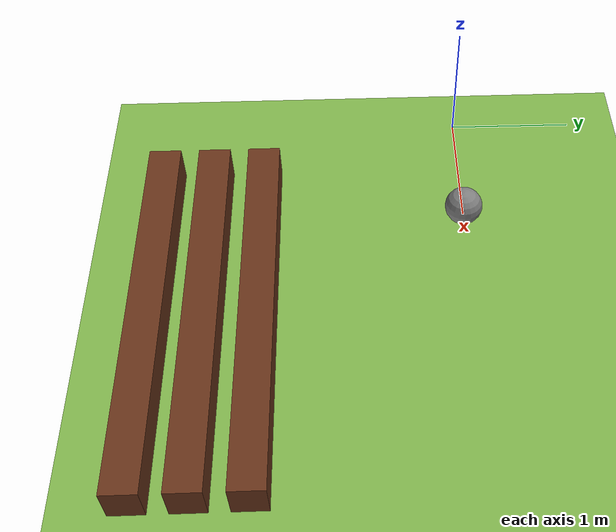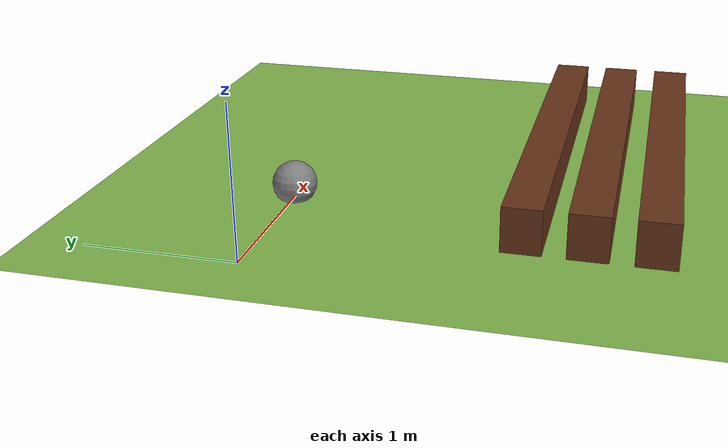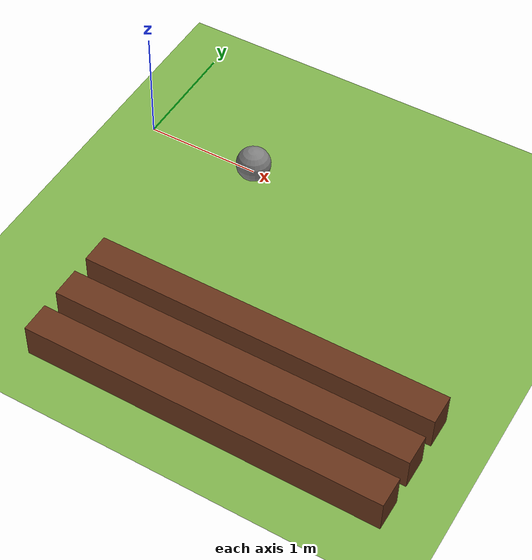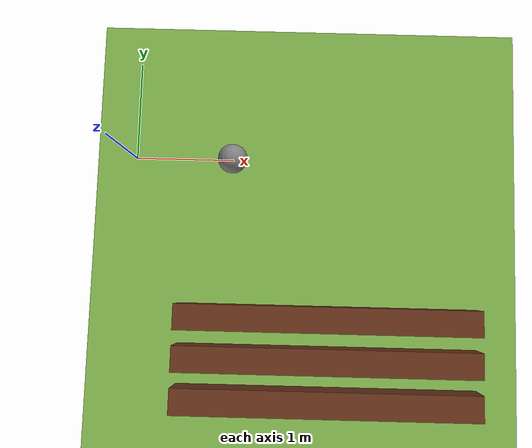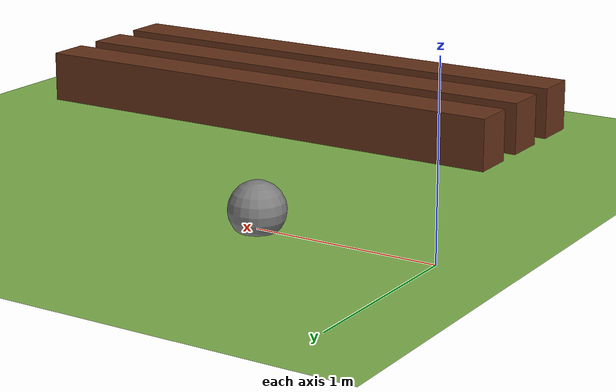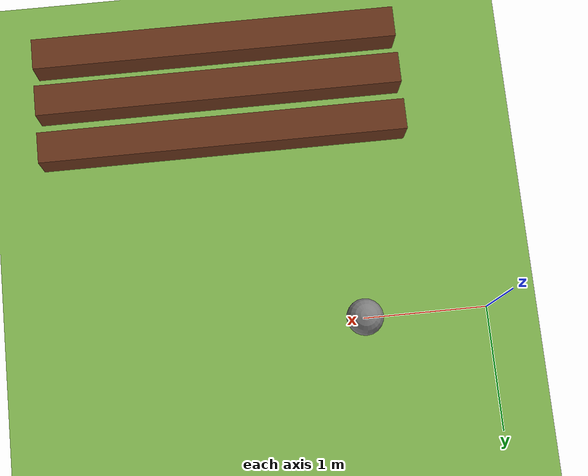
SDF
<?xml version="1.0" ?>
<sdf version="1.8">
  <world name="community_garden">

    <physics name="1ms" type="ignored">
      <max_step_size>0.001</max_step_size>
      <real_time_factor>1.0</real_time_factor>
    </physics>

    <plugin filename="gz-sim-physics-system" name="gz::sim::systems::Physics"/>
    <plugin filename="gz-sim-user-commands-system" name="gz::sim::systems::UserCommands"/>
    <plugin filename="gz-sim-scene-broadcaster-system" name="gz::sim::systems::SceneBroadcaster"/>
    <plugin filename="gz-sim-contact-system" name="gz::sim::systems::Contact"/>
    <plugin filename="gz-sim-imu-system" name="gz::sim::systems::Imu"/>
    <plugin filename="gz-sim-sensors-system" name="gz::sim::systems::Sensors">
      <render_engine>ogre2</render_engine>
    </plugin>

    <light type="directional" name="sun">
      <cast_shadows>true</cast_shadows>
      <pose>0 0 10 0 0 0</pose>
      <diffuse>0.8 0.8 0.8 1</diffuse>
      <specular>0.2 0.2 0.2 1</specular>
      <direction>-0.5 0.1 -0.9</direction>
    </light>

    <!-- Simple ground plane (no model reference) -->
    <model name="ground_plane">
      <static>true</static>
      <link name="link">
        <collision name="collision">
          <geometry>
            <plane>
              <normal>0 0 1</normal>
              <size>100 100</size>
            </plane>
          </geometry>
          <surface>
            <friction>
              <ode>
                <mu>1.0</mu>
                <mu2>1.0</mu2>
              </ode>
            </friction>
          </surface>
        </collision>
        <visual name="visual">
          <geometry>
            <plane>
              <normal>0 0 1</normal>
              <size>100 100</size>
            </plane>
          </geometry>
          <material>
            <ambient>0.5 0.7 0.3 1</ambient>
            <diffuse>0.5 0.7 0.3 1</diffuse>
            <specular>0.1 0.1 0.1 1</specular>
          </material>
        </visual>
      </link>
    </model>

    <!-- Crop Beds -->
    <model name="crop_bed_01">
      <static>true</static>
      <pose>2 -2.4 0.15 0 0 0</pose>
      <link name="bed">
        <collision name="collision">
          <geometry>
            <box>
              <size>3.0 0.254 0.3</size>
            </box>
          </geometry>
        </collision>
        <visual name="visual">
          <geometry>
            <box>
              <size>3.0 0.254 0.3</size>
            </box>
          </geometry>
          <material>
            <ambient>0.4 0.2 0.1 1</ambient>
            <diffuse>0.4 0.2 0.1 1</diffuse>
          </material>
        </visual>
      </link>
    </model>

    <model name="crop_bed_02">
      <static>true</static>
      <pose>2 -2.0 0.15 0 0 0</pose>
      <link name="bed">
        <collision name="collision">
          <geometry>
            <box>
              <size>3.0 0.254 0.3</size>
            </box>
          </geometry>
        </collision>
        <visual name="visual">
          <geometry>
            <box>
              <size>3.0 0.254 0.3</size>
            </box>
          </geometry>
          <material>
            <ambient>0.4 0.2 0.1 1</ambient>
            <diffuse>0.4 0.2 0.1 1</diffuse>
          </material>
        </visual>
      </link>
    </model>

    <model name="crop_bed_03">
      <static>true</static>
      <pose>2 -1.6 0.15 0 0 0</pose>
      <link name="bed">
        <collision name="collision">
          <geometry>
            <box>
              <size>3.0 0.254 0.3</size>
            </box>
          </geometry>
        </collision>
        <visual name="visual">
          <geometry>
            <box>
              <size>3.0 0.254 0.3</size>
            </box>
          </geometry>
          <material>
            <ambient>0.4 0.2 0.1 1</ambient>
            <diffuse>0.4 0.2 0.1 1</diffuse>
          </material>
        </visual>
      </link>
    </model>

    <!-- Rock obstacle -->
    <model name="rock_01">
      <static>true</static>
      <pose>1 0 0.1 0 0 0</pose>
      <link name="rock">
        <collision name="collision">
          <geometry>
            <sphere>
              <radius>0.15</radius>
            </sphere>
          </geometry>
        </collision>
        <visual name="visual">
          <geometry>
            <sphere>
              <radius>0.15</radius>
            </sphere>
          </geometry>
          <material>
            <ambient>0.5 0.5 0.5 1</ambient>
            <diffuse>0.5 0.5 0.5 1</diffuse>
          </material>
        </visual>
      </link>
    </model>

  </world>
</sdf>
